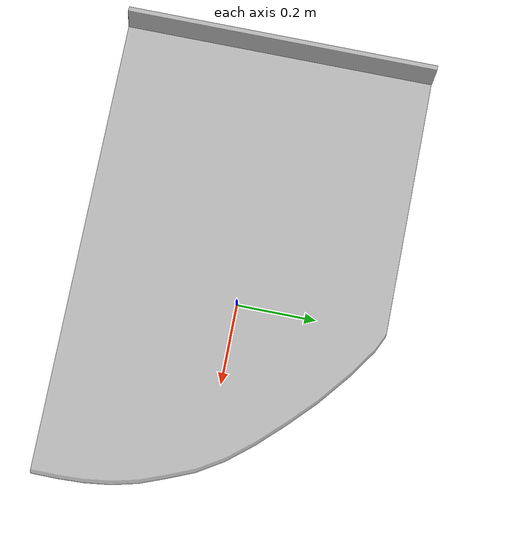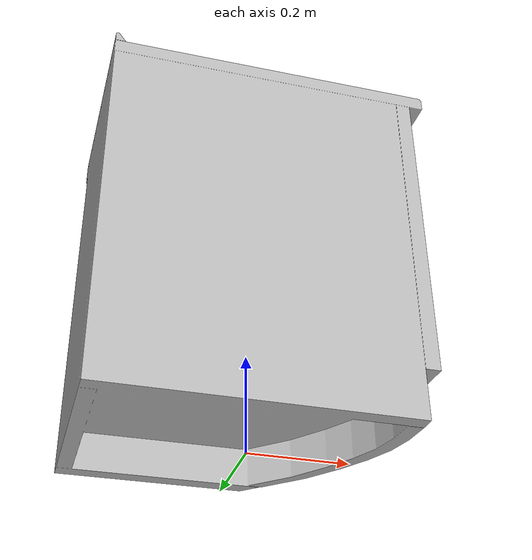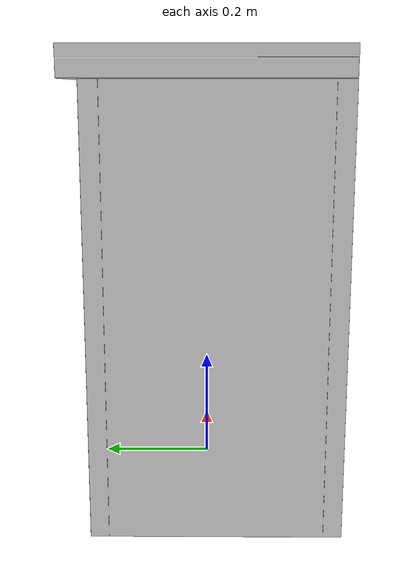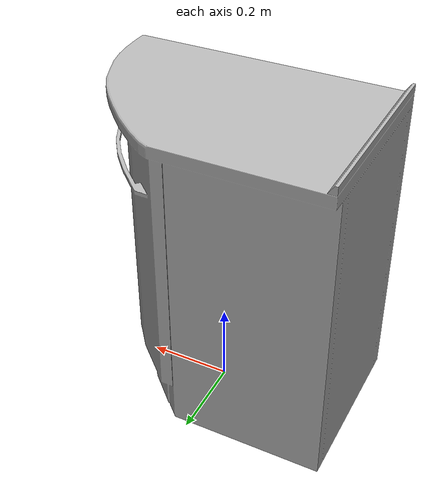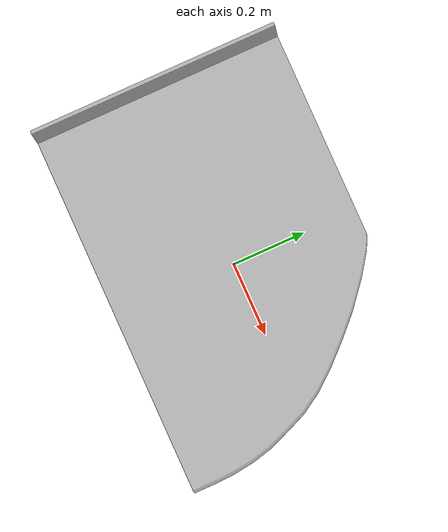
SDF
<?xml version='1.0'?>
<sdf version='1.4'>
  <model name='290'>
    <pose>0 0 0 0 0 0</pose>
    <static>true</static>
    <link name='link'>
      <collision name='collision'>
        <pose>0 0 0 0 0 0</pose>
        <geometry>
          <box>
            <size>0.66 0.440009 2</size>
          </box>
        </geometry>
      </collision>
      <visual name='visual'>
        <pose>0 0 0 0 0 0</pose>
        <geometry>
          <mesh><uri>model://290/290.dae</uri></mesh>
        </geometry>
      </visual>
    </link>
  </model>
</sdf>
